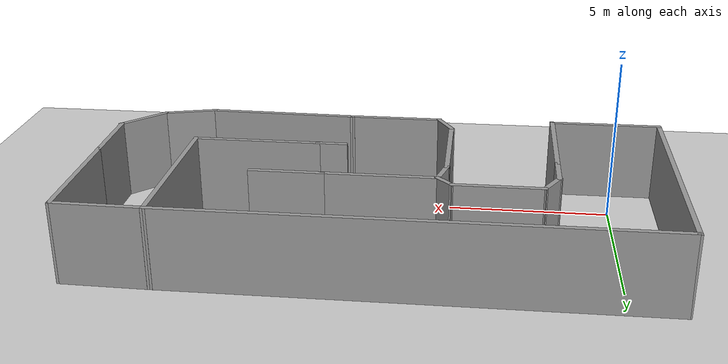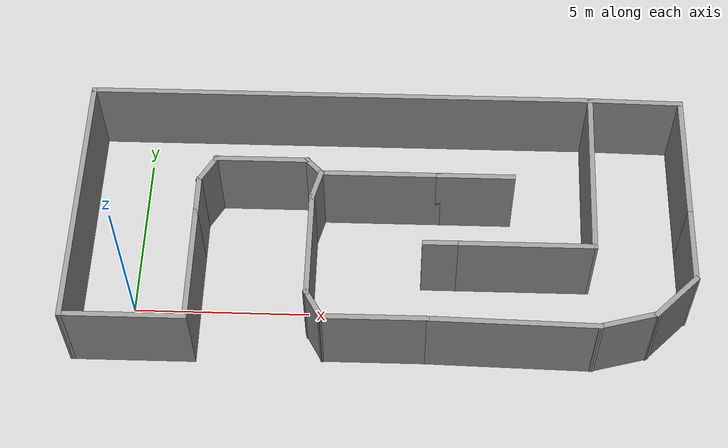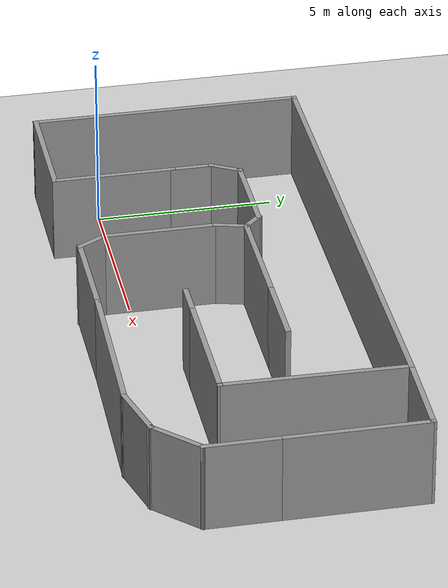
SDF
<sdf version="1.6">
 <world name="default">
  <light name="sun" type="directional">
   <pose>0 0 10 0 -0 0</pose>
   <diffuse>0.8 0.8 0.8 1</diffuse>
   <specular>0.1 0.1 0.1 1</specular>
   <attenuation>
    <range>1000</range>
    <constant>0.9</constant>
    <linear>0.01</linear>
    <quadratic>0.001</quadratic>
   </attenuation>
   <direction>-0.5 0.5 -1</direction>
  </light>
  <model name="ground_plane">
   <static>1</static>
   <link name="link">
    <collision name="collision">
     <geometry><plane><normal>0 0 1</normal><size>100 100</size></plane></geometry>
     <surface><friction><ode><mu>100</mu><mu2>50</mu2></ode></friction></surface>
    </collision>
    <visual name="visual">
     <cast_shadows>0</cast_shadows>
     <geometry><plane><normal>0 0 1</normal><size>100 100</size></plane></geometry>
     <material>
      <script><uri>file://media/materials/scripts/gazebo.material</uri><name>Gazebo/Grey</name></script>
     </material>
    </visual>
   </link>
  </model>
  <gravity>0 0 -9.8</gravity>
  <magnetic_field>6e-06 2.3e-05 -4.2e-05</magnetic_field>
  <atmosphere type="adiabatic"/>
  <physics name="default_physics" default="0" type="ode">
   <max_step_size>0.001</max_step_size>
   <real_time_factor>1</real_time_factor>
   <real_time_update_rate>1000</real_time_update_rate>
  </physics>
  <scene><ambient>0.4 0.4 0.4 1</ambient><background>0.7 0.7 0.7 1</background><shadows>1</shadows></scene>
  <spherical_coordinates>
   <surface_model>EARTH_WGS84</surface_model>
   <latitude_deg>0</latitude_deg>
   <longitude_deg>0</longitude_deg>
   <elevation>0</elevation>
   <heading_deg>0</heading_deg>
  </spherical_coordinates>
  <model name="testmap2">
   <pose>7.06549 2.24632 0 0 -0 0</pose>
   <link name="Wall_23">
    <collision name="Wall_23_Collision">
     <geometry><box><size>4 0.15 2.5</size></box></geometry>
     <pose>0 0 1.25 0 -0 0</pose>
    </collision>
    <visual name="Wall_23_Visual">
     <pose>0 0 1.25 0 -0 0</pose>
     <geometry><box><size>4 0.15 2.5</size></box></geometry>
     <material>
      <script><uri>file://media/materials/scripts/gazebo.material</uri><name>Gazebo/Grey</name></script>
      <ambient>1 1 1 1</ambient>
     </material>
    </visual>
    <pose>3.96029 -1.2606 0 0 -0 3.14159</pose>
   </link>
   <link name="Wall_25">
    <collision name="Wall_25_Collision">
     <geometry><box><size>1 0.15 2.5</size></box></geometry>
     <pose>0 0 1.25 0 -0 0</pose>
    </collision>
    <visual name="Wall_25_Visual">
     <pose>0 0 1.25 0 -0 0</pose>
     <geometry><box><size>1 0.15 2.5</size></box></geometry>
     <material>
      <script><uri>file://media/materials/scripts/gazebo.material</uri><name>Gazebo/Grey</name></script>
      <ambient>1 1 1 1</ambient>
     </material>
    </visual>
    <pose>1.61029 -1.2606 0 0 -0 3.14159</pose>
   </link>
   <link name="Wall_4">
    <collision name="Wall_4_Collision">
     <geometry><box><size>3.53518 0.15 2.5</size></box></geometry>
     <pose>0 0 1.25 0 -0 0</pose>
    </collision>
    <visual name="Wall_4_Visual">
     <pose>0 0 1.25 0 -0 0</pose>
     <geometry><box><size>3.53518 0.15 2.5</size></box></geometry>
     <material>
      <script><uri>file://media/materials/scripts/gazebo.material</uri><name>Gazebo/Grey</name></script>
      <ambient>1 1 1 1</ambient>
     </material>
    </visual>
    <pose>-6.93637 -3.7649 0 0 -0 0</pose>
   </link>
   <link name="Wall_42">
    <collision name="Wall_42_Collision">
     <geometry><box><size>14.75 0.15 2.5</size></box></geometry>
     <pose>0 0 1.25 0 -0 0</pose>
    </collision>
    <visual name="Wall_42_Visual">
     <pose>0 0 1.25 0 -0 0</pose>
     <geometry><box><size>14.75 0.15 2.5</size></box></geometry>
     <material>
      <script><uri>file://media/materials/scripts/gazebo.material</uri><name>Gazebo/Grey</name></script>
      <ambient>1 1 1 1</ambient>
     </material>
    </visual>
    <pose>-1.32843 3.78035 0 0 -0 0</pose>
   </link>
   <link name="Wall_46">
    <collision name="Wall_46_Collision">
     <geometry><box><size>7.69525 0.15 2.5</size></box></geometry>
     <pose>0 0 1.25 0 -0 0</pose>
    </collision>
    <visual name="Wall_46_Visual">
     <pose>0 0 1.25 0 -0 0</pose>
     <geometry><box><size>7.69525 0.15 2.5</size></box></geometry>
     <material>
      <script><uri>file://media/materials/scripts/gazebo.material</uri><name>Gazebo/Grey</name></script>
      <ambient>1 1 1 1</ambient>
     </material>
    </visual>
    <pose>-8.62869 0.007724 0 0 0 -1.57087</pose>
   </link>
   <link name="Wall_48">
    <collision name="Wall_48_Collision">
     <geometry><box><size>5.19169 0.15 2.5</size></box></geometry>
     <pose>0 0 1.25 0 -0 0</pose>
    </collision>
    <visual name="Wall_48_Visual">
     <pose>0 0 1.25 0 -0 0</pose>
     <geometry><box><size>5.19169 0.15 2.5</size></box></geometry>
     <material>
      <script><uri>file://media/materials/scripts/gazebo.material</uri><name>Gazebo/Grey</name></script>
      <ambient>1 1 1 1</ambient>
     </material>
    </visual>
    <pose>5.92843 1.25987 0 0 -0 1.55368</pose>
   </link>
   <link name="Wall_50">
    <collision name="Wall_50_Collision">
     <geometry><box><size>1.75 0.15 2.5</size></box></geometry>
     <pose>0 0 1.25 0 -0 0</pose>
    </collision>
    <visual name="Wall_50_Visual">
     <pose>0 0 1.25 0 -0 0</pose>
     <geometry><box><size>1.75 0.15 2.5</size></box></geometry>
     <material>
      <script><uri>file://media/materials/scripts/gazebo.material</uri><name>Gazebo/Grey</name></script>
      <ambient>1 1 1 1</ambient>
     </material>
    </visual>
    <pose>6.69378 -3.55784 0 0 -0 0.261799</pose>
   </link>
   <link name="Wall_51">
    <collision name="Wall_51_Collision">
     <geometry><box><size>1.75 0.15 2.5</size></box></geometry>
     <pose>0 0 1.25 0 -0 0</pose>
    </collision>
    <visual name="Wall_51_Visual">
     <pose>0 0 1.25 0 -0 0</pose>
     <geometry><box><size>1.75 0.15 2.5</size></box></geometry>
     <material>
      <script><uri>file://media/materials/scripts/gazebo.material</uri><name>Gazebo/Grey</name></script>
      <ambient>1 1 1 1</ambient>
     </material>
    </visual>
    <pose>8.03221 -2.7851 0 0 -0 0.785398</pose>
   </link>
   <link name="Wall_52">
    <collision name="Wall_52_Collision">
     <geometry><box><size>2.25 0.15 2.5</size></box></geometry>
     <pose>0 0 1.25 0 -0 0</pose>
    </collision>
    <visual name="Wall_52_Visual">
     <pose>0 0 1.25 0 -0 0</pose>
     <geometry><box><size>2.25 0.15 2.5</size></box></geometry>
     <material>
      <script><uri>file://media/materials/scripts/gazebo.material</uri><name>Gazebo/Grey</name></script>
      <ambient>1 1 1 1</ambient>
     </material>
    </visual>
    <pose>8.5979 -1.16942 0 0 -0 1.5708</pose>
   </link>
   <link name="Wall_53">
    <collision name="Wall_53_Collision">
     <geometry><box><size>4 0.15 2.5</size></box></geometry>
     <pose>0 0 1.25 0 -0 0</pose>
    </collision>
    <visual name="Wall_53_Visual">
     <pose>0 0 1.25 0 -0 0</pose>
     <geometry><box><size>4 0.15 2.5</size></box></geometry>
     <material>
      <script><uri>file://media/materials/scripts/gazebo.material</uri><name>Gazebo/Grey</name></script>
      <ambient>1 1 1 1</ambient>
     </material>
    </visual>
    <pose>8.5979 1.80558 0 0 -0 1.5708</pose>
   </link>
   <link name="Wall_54">
    <collision name="Wall_54_Collision">
     <geometry><box><size>2.77679 0.15 2.5</size></box></geometry>
     <pose>0 0 1.25 0 -0 0</pose>
    </collision>
    <visual name="Wall_54_Visual">
     <pose>0 0 1.25 0 -0 0</pose>
     <geometry><box><size>2.77679 0.15 2.5</size></box></geometry>
     <material>
      <script><uri>file://media/materials/scripts/gazebo.material</uri><name>Gazebo/Grey</name></script>
      <ambient>1 1 1 1</ambient>
     </material>
    </visual>
    <pose>7.28474 3.75547 0 0 -0 3.12265</pose>
   </link>
   <link name="Wall_57">
    <collision name="Wall_57_Collision">
     <geometry><box><size>3.5 0.15 2.5</size></box></geometry>
     <pose>0 0 1.25 0 -0 0</pose>
    </collision>
    <visual name="Wall_57_Visual">
     <pose>0 0 1.25 0 -0 0</pose>
     <geometry><box><size>3.5 0.15 2.5</size></box></geometry>
     <material>
      <script><uri>file://media/materials/scripts/gazebo.material</uri><name>Gazebo/Grey</name></script>
      <ambient>1 1 1 1</ambient>
     </material>
    </visual>
    <pose>-5.24378 -2.0899 0 0 -0 1.5708</pose>
   </link>
   <link name="Wall_58">
    <collision name="Wall_58_Collision">
     <geometry><box><size>1.25 0.15 2.5</size></box></geometry>
     <pose>0 0 1.25 0 -0 0</pose>
    </collision>
    <visual name="Wall_58_Visual">
     <pose>0 0 1.25 0 -0 0</pose>
     <geometry><box><size>1.25 0.15 2.5</size></box></geometry>
     <material>
      <script><uri>file://media/materials/scripts/gazebo.material</uri><name>Gazebo/Grey</name></script>
      <ambient>1 1 1 1</ambient>
     </material>
    </visual>
    <pose>-5.24378 0.1351 0 0 -0 1.5708</pose>
   </link>
   <link name="Wall_59">
    <collision name="Wall_59_Collision">
     <geometry><box><size>1 0.15 2.5</size></box></geometry>
     <pose>0 0 1.25 0 -0 0</pose>
    </collision>
    <visual name="Wall_59_Visual">
     <pose>0 0 1.25 0 -0 0</pose>
     <geometry><box><size>1 0.15 2.5</size></box></geometry>
     <material>
      <script><uri>file://media/materials/scripts/gazebo.material</uri><name>Gazebo/Grey</name></script>
      <ambient>1 1 1 1</ambient>
     </material>
    </visual>
    <pose>-5.03128 1.05316 0 0 -0 1.0472</pose>
   </link>
   <link name="Wall_60">
    <collision name="Wall_60_Collision">
     <geometry><box><size>2.75 0.15 2.5</size></box></geometry>
     <pose>0 0 1.25 0 -0 0</pose>
    </collision>
    <visual name="Wall_60_Visual">
     <pose>0 0 1.25 0 -0 0</pose>
     <geometry><box><size>2.75 0.15 2.5</size></box></geometry>
     <material>
      <script><uri>file://media/materials/scripts/gazebo.material</uri><name>Gazebo/Grey</name></script>
      <ambient>1 1 1 1</ambient>
     </material>
    </visual>
    <pose>-3.51878 1.42122 0 0 -0 0</pose>
   </link>
   <link name="Wall_63">
    <collision name="Wall_63_Collision">
     <geometry><box><size>0.75 0.15 2.5</size></box></geometry>
     <pose>0 0 1.25 0 -0 0</pose>
    </collision>
    <visual name="Wall_63_Visual">
     <pose>0 0 1.25 0 -0 0</pose>
     <geometry><box><size>0.75 0.15 2.5</size></box></geometry>
     <material>
      <script><uri>file://media/materials/scripts/gazebo.material</uri><name>Gazebo/Grey</name></script>
      <ambient>1 1 1 1</ambient>
     </material>
    </visual>
    <pose>-2.00664 1.20909 0 0 0 -0.785398</pose>
   </link>
   <link name="Wall_64">
    <collision name="Wall_64_Collision">
     <geometry><box><size>3.5 0.15 2.5</size></box></geometry>
     <pose>0 0 1.25 0 -0 0</pose>
    </collision>
    <visual name="Wall_64_Visual">
     <pose>0 0 1.25 0 -0 0</pose>
     <geometry><box><size>3.5 0.15 2.5</size></box></geometry>
     <material>
      <script><uri>file://media/materials/scripts/gazebo.material</uri><name>Gazebo/Grey</name></script>
      <ambient>1 1 1 1</ambient>
     </material>
    </visual>
    <pose>-0.119513 0.996958 0 0 -0 0</pose>
   </link>
   <link name="Wall_65">
    <collision name="Wall_65_Collision">
     <geometry><box><size>2.25 0.15 2.5</size></box></geometry>
     <pose>0 0 1.25 0 -0 0</pose>
    </collision>
    <visual name="Wall_65_Visual">
     <pose>0 0 1.25 0 -0 0</pose>
     <geometry><box><size>2.25 0.15 2.5</size></box></geometry>
     <material>
      <script><uri>file://media/materials/scripts/gazebo.material</uri><name>Gazebo/Grey</name></script>
      <ambient>1 1 1 1</ambient>
     </material>
    </visual>
    <pose>2.60549 0.996958 0 0 -0 0</pose>
   </link>
   <link name="Wall_67">
    <collision name="Wall_67_Collision">
     <geometry><box><size>1 0.15 2.5</size></box></geometry>
     <pose>0 0 1.25 0 -0 0</pose>
    </collision>
    <visual name="Wall_67_Visual">
     <pose>0 0 1.25 0 -0 0</pose>
     <geometry><box><size>1 0.15 2.5</size></box></geometry>
     <material>
      <script><uri>file://media/materials/scripts/gazebo.material</uri><name>Gazebo/Grey</name></script>
      <ambient>1 1 1 1</ambient>
     </material>
    </visual>
    <pose>-1.90451 0.586439 0 0 0 -1.8326</pose>
   </link>
   <link name="Wall_68">
    <collision name="Wall_68_Collision">
     <geometry><box><size>3.25 0.15 2.5</size></box></geometry>
     <pose>0 0 1.25 0 -0 0</pose>
    </collision>
    <visual name="Wall_68_Visual">
     <pose>0 0 1.25 0 -0 0</pose>
     <geometry><box><size>3.25 0.15 2.5</size></box></geometry>
     <material>
      <script><uri>file://media/materials/scripts/gazebo.material</uri><name>Gazebo/Grey</name></script>
      <ambient>1 1 1 1</ambient>
     </material>
    </visual>
    <pose>-2.01451 -1.37408 0 0 0 -1.5708</pose>
   </link>
   <link name="Wall_69">
    <collision name="Wall_69_Collision">
     <geometry><box><size>1 0.15 2.5</size></box></geometry>
     <pose>0 0 1.25 0 -0 0</pose>
    </collision>
    <visual name="Wall_69_Visual">
     <pose>0 0 1.25 0 -0 0</pose>
     <geometry><box><size>1 0.15 2.5</size></box></geometry>
     <material>
      <script><uri>file://media/materials/scripts/gazebo.material</uri><name>Gazebo/Grey</name></script>
      <ambient>1 1 1 1</ambient>
     </material>
    </visual>
    <pose>-1.80201 -3.29214 0 0 0 -1.0472</pose>
   </link>
   <link name="Wall_71">
    <collision name="Wall_71_Collision">
     <geometry><box><size>3 0.15 2.5</size></box></geometry>
     <pose>0 0 1.25 0 -0 0</pose>
    </collision>
    <visual name="Wall_71_Visual">
     <pose>0 0 1.25 0 -0 0</pose>
     <geometry><box><size>3 0.15 2.5</size></box></geometry>
     <material>
      <script><uri>file://media/materials/scripts/gazebo.material</uri><name>Gazebo/Grey</name></script>
      <ambient>1 1 1 1</ambient>
     </material>
    </visual>
    <pose>-0.164509 -3.6602 0 0 -0 0</pose>
   </link>
   <link name="Wall_72">
    <collision name="Wall_72_Collision">
     <geometry><box><size>4.81173 0.15 2.5</size></box></geometry>
     <pose>0 0 1.25 0 -0 0</pose>
    </collision>
    <visual name="Wall_72_Visual">
     <pose>0 0 1.25 0 -0 0</pose>
     <geometry><box><size>4.81173 0.15 2.5</size></box></geometry>
     <material>
      <script><uri>file://media/materials/scripts/gazebo.material</uri><name>Gazebo/Grey</name></script>
      <ambient>1 1 1 1</ambient>
     </material>
    </visual>
    <pose>3.59077 -3.71255 0 0 0 -0.022461</pose>
   </link>
   <static>1</static>
  </model>
 </world>
</sdf>
